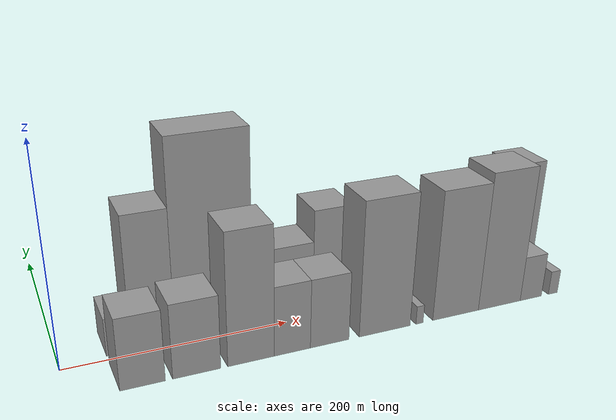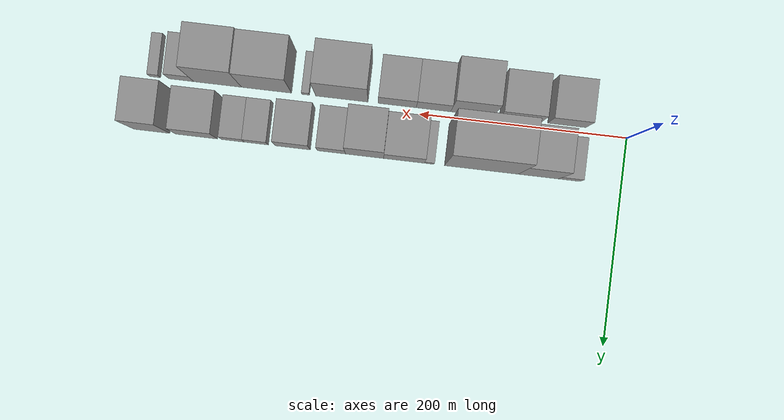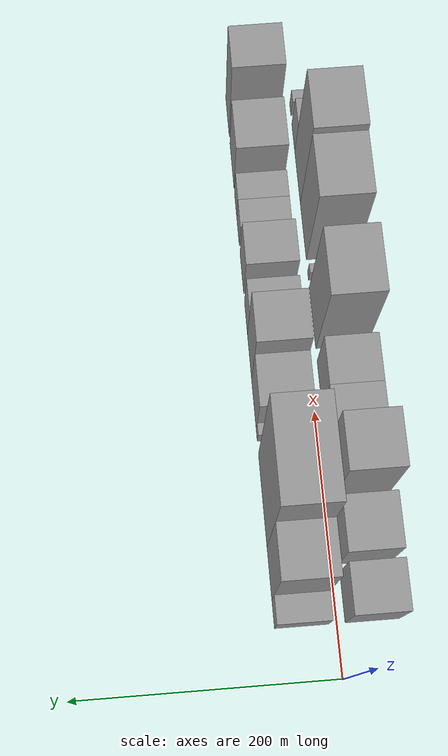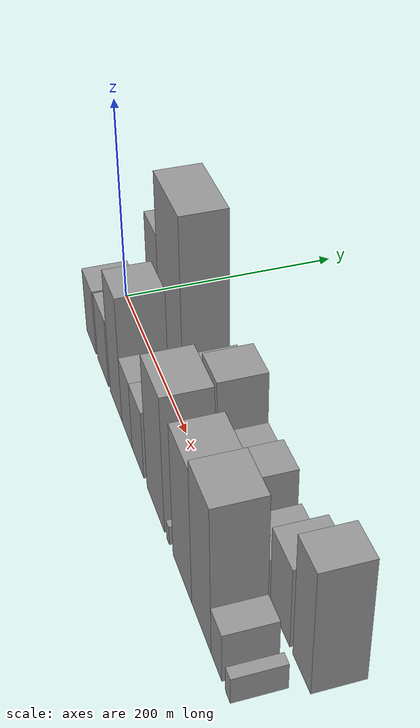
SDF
<sdf version="1.6">
 <world name="default">
  <scene>
   <sky><clouds><speed>12</speed></clouds></sky>
   <ambient>0.4 0.4 0.4 1</ambient>
   <background>0.7 0.7 0.7 1</background>
   <shadows>1</shadows>
  </scene>
  <gravity>0 0 -9.8066</gravity>
  <magnetic_field>6e-06 2.3e-05 -4.2e-05</magnetic_field>
  <physics default="0" name="default_physics" type="ode">
   <ode>
    <solver>
     <type>quick</type>
     <iters>10</iters>
     <sor>1.0</sor>
     <use_dynamic_moi_rescaling>0</use_dynamic_moi_rescaling>
    </solver>
    <constraints>
     <cfm>0</cfm>
     <erp>0.2</erp>
     <contact_max_correcting_vel>100</contact_max_correcting_vel>
     <contact_surface_layer>0.001</contact_surface_layer>
    </constraints>
   </ode>
   <max_step_size>0.004</max_step_size>
   <real_time_factor>1</real_time_factor>
   <real_time_update_rate>250</real_time_update_rate>
  </physics>
  <light name="sun" type="directional">
   <pose>0 0 10 0 0 0</pose>
   <diffuse>0.8 0.8 0.8 1</diffuse>
   <specular>0.2 0.2 0.2 1</specular>
   <attenuation>
    <range>1000</range>
    <constant>0.9</constant>
    <linear>0.01</linear>
    <quadratic>0.001</quadratic>
   </attenuation>
   <direction>-0.5 0.1 -0.9</direction>
  </light>
  <model name="building_1">
   <static>1</static>
   <pose>50.4767 26.0000 0 0.000000 0.000000 1.570796</pose>
   <link name="link">
    <pose>0 0 18.00 0 0 0</pose>
    <collision name="collision"><geometry><box><size>40.0000 20.9534 36.0000</size></box></geometry></collision>
    <visual name="visual">
     <cast_shadows>0</cast_shadows>
     <geometry><box><size>40.0000 20.9534 36.0000</size></box></geometry>
     <material>
      <script>
       <uri>model://grey_wall/materials/scripts</uri>
       <uri>model://grey_wall/materials/textures</uri>
       <name>vrc/grey_wall</name>
      </script>
     </material>
    </visual>
   </link>
  </model>
  <model name="building_2">
   <static>1</static>
   <pose>80.3056 26.0000 0 0.000000 0.000000 1.570796</pose>
   <link name="link">
    <pose>0 0 63.00 0 0 0</pose>
    <collision name="collision"><geometry><box><size>40.0000 38.7043 126.0000</size></box></geometry></collision>
    <visual name="visual">
     <cast_shadows>0</cast_shadows>
     <geometry><box><size>40.0000 38.7043 126.0000</size></box></geometry>
     <material>
      <script>
       <uri>model://grey_wall/materials/scripts</uri>
       <uri>model://grey_wall/materials/textures</uri>
       <name>vrc/grey_wall</name>
      </script>
     </material>
    </visual>
   </link>
  </model>
  <model name="building_3">
   <static>1</static>
   <pose>135.0981 26.0000 0 0.000000 0.000000 1.570796</pose>
   <link name="link">
    <pose>0 0 93.00 0 0 0</pose>
    <collision name="collision"><geometry><box><size>40.0000 70.8808 186.0000</size></box></geometry></collision>
    <visual name="visual">
     <cast_shadows>0</cast_shadows>
     <geometry><box><size>40.0000 70.8808 186.0000</size></box></geometry>
     <material>
      <script>
       <uri>model://grey_wall/materials/scripts</uri>
       <uri>model://grey_wall/materials/textures</uri>
       <name>vrc/grey_wall</name>
      </script>
     </material>
    </visual>
   </link>
  </model>
  <model name="building_4">
   <static>1</static>
   <pose>185.2259 26.0000 0 0.000000 0.000000 1.570796</pose>
   <link name="link">
    <pose>0 0 10.50 0 0 0</pose>
    <collision name="collision"><geometry><box><size>40.0000 9.3748 21.0000</size></box></geometry></collision>
    <visual name="visual">
     <cast_shadows>0</cast_shadows>
     <geometry><box><size>40.0000 9.3748 21.0000</size></box></geometry>
     <material>
      <script>
       <uri>model://grey_wall/materials/scripts</uri>
       <uri>model://grey_wall/materials/textures</uri>
       <name>vrc/grey_wall</name>
      </script>
     </material>
    </visual>
   </link>
  </model>
  <model name="building_5">
   <static>1</static>
   <pose>209.4466 26.0000 0 0.000000 0.000000 1.570796</pose>
   <link name="link">
    <pose>0 0 36.00 0 0 0</pose>
    <collision name="collision"><geometry><box><size>40.0000 39.0666 72.0000</size></box></geometry></collision>
    <visual name="visual">
     <cast_shadows>0</cast_shadows>
     <geometry><box><size>40.0000 39.0666 72.0000</size></box></geometry>
     <material>
      <script>
       <uri>model://grey_wall/materials/scripts</uri>
       <uri>model://grey_wall/materials/textures</uri>
       <name>vrc/grey_wall</name>
      </script>
     </material>
    </visual>
   </link>
  </model>
  <model name="building_6">
   <static>1</static>
   <pose>247.3911 26.0000 0 0.000000 0.000000 1.570796</pose>
   <link name="link">
    <pose>0 0 51.00 0 0 0</pose>
    <collision name="collision"><geometry><box><size>40.0000 36.8223 102.0000</size></box></geometry></collision>
    <visual name="visual">
     <cast_shadows>0</cast_shadows>
     <geometry><box><size>40.0000 36.8223 102.0000</size></box></geometry>
     <material>
      <script>
       <uri>model://grey_wall/materials/scripts</uri>
       <uri>model://grey_wall/materials/textures</uri>
       <name>vrc/grey_wall</name>
      </script>
     </material>
    </visual>
   </link>
  </model>
  <model name="building_7">
   <static>1</static>
   <pose>279.3047 26.0000 0 0.000000 0.000000 1.570796</pose>
   <link name="link">
    <pose>0 0 27.00 0 0 0</pose>
    <collision name="collision"><geometry><box><size>40.0000 27.0050 54.0000</size></box></geometry></collision>
    <visual name="visual">
     <cast_shadows>0</cast_shadows>
     <geometry><box><size>40.0000 27.0050 54.0000</size></box></geometry>
     <material>
      <script>
       <uri>model://grey_wall/materials/scripts</uri>
       <uri>model://grey_wall/materials/textures</uri>
       <name>vrc/grey_wall</name>
      </script>
     </material>
    </visual>
   </link>
  </model>
  <model name="building_8">
   <static>1</static>
   <pose>316.4989 26.0000 0 0.000000 0.000000 1.570796</pose>
   <link name="link">
    <pose>0 0 33.00 0 0 0</pose>
    <collision name="collision"><geometry><box><size>40.0000 33.3832 66.0000</size></box></geometry></collision>
    <visual name="visual">
     <cast_shadows>0</cast_shadows>
     <geometry><box><size>40.0000 33.3832 66.0000</size></box></geometry>
     <material>
      <script>
       <uri>model://grey_wall/materials/scripts</uri>
       <uri>model://grey_wall/materials/textures</uri>
       <name>vrc/grey_wall</name>
      </script>
     </material>
    </visual>
   </link>
  </model>
  <model name="building_9">
   <static>1</static>
   <pose>351.6913 26.0000 0 0.000000 0.000000 1.570796</pose>
   <link name="link">
    <pose>0 0 19.50 0 0 0</pose>
    <collision name="collision"><geometry><box><size>40.0000 23.0017 39.0000</size></box></geometry></collision>
    <visual name="visual">
     <cast_shadows>0</cast_shadows>
     <geometry><box><size>40.0000 23.0017 39.0000</size></box></geometry>
     <material>
      <script>
       <uri>model://grey_wall/materials/scripts</uri>
       <uri>model://grey_wall/materials/textures</uri>
       <name>vrc/grey_wall</name>
      </script>
     </material>
    </visual>
   </link>
  </model>
  <model name="building_10">
   <static>1</static>
   <pose>374.2593 26.0000 0 0.000000 0.000000 1.570796</pose>
   <link name="link">
    <pose>0 0 19.50 0 0 0</pose>
    <collision name="collision"><geometry><box><size>40.0000 22.1343 39.0000</size></box></geometry></collision>
    <visual name="visual">
     <cast_shadows>0</cast_shadows>
     <geometry><box><size>40.0000 22.1343 39.0000</size></box></geometry>
     <material>
      <script>
       <uri>model://grey_wall/materials/scripts</uri>
       <uri>model://grey_wall/materials/textures</uri>
       <name>vrc/grey_wall</name>
      </script>
     </material>
    </visual>
   </link>
  </model>
  <model name="building_11">
   <static>1</static>
   <pose>409.3390 26.0000 0 0.000000 0.000000 1.570796</pose>
   <link name="link">
    <pose>0 0 37.50 0 0 0</pose>
    <collision name="collision"><geometry><box><size>40.0000 40.0251 75.0000</size></box></geometry></collision>
    <visual name="visual">
     <cast_shadows>0</cast_shadows>
     <geometry><box><size>40.0000 40.0251 75.0000</size></box></geometry>
     <material>
      <script>
       <uri>model://grey_wall/materials/scripts</uri>
       <uri>model://grey_wall/materials/textures</uri>
       <name>vrc/grey_wall</name>
      </script>
     </material>
    </visual>
   </link>
  </model>
  <model name="building_12">
   <static>1</static>
   <pose>452.5231 26.0000 0 0.000000 0.000000 1.570796</pose>
   <link name="link">
    <pose>0 0 57.00 0 0 0</pose>
    <collision name="collision"><geometry><box><size>40.0000 34.3430 114.0000</size></box></geometry></collision>
    <visual name="visual">
     <cast_shadows>0</cast_shadows>
     <geometry><box><size>40.0000 34.3430 114.0000</size></box></geometry>
     <material>
      <script>
       <uri>model://grey_wall/materials/scripts</uri>
       <uri>model://grey_wall/materials/textures</uri>
       <name>vrc/grey_wall</name>
      </script>
     </material>
    </visual>
   </link>
  </model>
  <model name="building_13">
   <static>1</static>
   <pose>58.4960 -26.0000 0 0.000000 0.000000 1.570796</pose>
   <link name="link">
    <pose>0 0 33.00 0 0 0</pose>
    <collision name="collision"><geometry><box><size>40.0000 36.9920 66.0000</size></box></geometry></collision>
    <visual name="visual">
     <cast_shadows>0</cast_shadows>
     <geometry><box><size>40.0000 36.9920 66.0000</size></box></geometry>
     <material>
      <script>
       <uri>model://grey_wall/materials/scripts</uri>
       <uri>model://grey_wall/materials/textures</uri>
       <name>vrc/grey_wall</name>
      </script>
     </material>
    </visual>
   </link>
  </model>
  <model name="building_14">
   <static>1</static>
   <pose>103.3198 -26.0000 0 0.000000 0.000000 1.570796</pose>
   <link name="link">
    <pose>0 0 34.50 0 0 0</pose>
    <collision name="collision"><geometry><box><size>40.0000 40.6556 69.0000</size></box></geometry></collision>
    <visual name="visual">
     <cast_shadows>0</cast_shadows>
     <geometry><box><size>40.0000 40.6556 69.0000</size></box></geometry>
     <material>
      <script>
       <uri>model://grey_wall/materials/scripts</uri>
       <uri>model://grey_wall/materials/textures</uri>
       <name>vrc/grey_wall</name>
      </script>
     </material>
    </visual>
   </link>
  </model>
  <model name="building_15">
   <static>1</static>
   <pose>150.1846 -26.0000 0 0.000000 0.000000 1.570796</pose>
   <link name="link">
    <pose>0 0 61.50 0 0 0</pose>
    <collision name="collision"><geometry><box><size>40.0000 41.0740 123.0000</size></box></geometry></collision>
    <visual name="visual">
     <cast_shadows>0</cast_shadows>
     <geometry><box><size>40.0000 41.0740 123.0000</size></box></geometry>
     <material>
      <script>
       <uri>model://grey_wall/materials/scripts</uri>
       <uri>model://grey_wall/materials/textures</uri>
       <name>vrc/grey_wall</name>
      </script>
     </material>
    </visual>
   </link>
  </model>
  <model name="building_16">
   <static>1</static>
   <pose>187.2796 -26.0000 0 0.000000 0.000000 1.570796</pose>
   <link name="link">
    <pose>0 0 33.00 0 0 0</pose>
    <collision name="collision"><geometry><box><size>40.0000 33.1161 66.0000</size></box></geometry></collision>
    <visual name="visual">
     <cast_shadows>0</cast_shadows>
     <geometry><box><size>40.0000 33.1161 66.0000</size></box></geometry>
     <material>
      <script>
       <uri>model://grey_wall/materials/scripts</uri>
       <uri>model://grey_wall/materials/textures</uri>
       <name>vrc/grey_wall</name>
      </script>
     </material>
    </visual>
   </link>
  </model>
  <model name="building_17">
   <static>1</static>
   <pose>222.0621 -26.0000 0 0.000000 0.000000 1.570796</pose>
   <link name="link">
    <pose>0 0 33.00 0 0 0</pose>
    <collision name="collision"><geometry><box><size>40.0000 36.4490 66.0000</size></box></geometry></collision>
    <visual name="visual">
     <cast_shadows>0</cast_shadows>
     <geometry><box><size>40.0000 36.4490 66.0000</size></box></geometry>
     <material>
      <script>
       <uri>model://grey_wall/materials/scripts</uri>
       <uri>model://grey_wall/materials/textures</uri>
       <name>vrc/grey_wall</name>
      </script>
     </material>
    </visual>
   </link>
  </model>
  <model name="building_18">
   <static>1</static>
   <pose>275.4888 -26.0000 0 0.000000 0.000000 1.570796</pose>
   <link name="link">
    <pose>0 0 64.50 0 0 0</pose>
    <collision name="collision"><geometry><box><size>40.0000 50.4043 129.0000</size></box></geometry></collision>
    <visual name="visual">
     <cast_shadows>0</cast_shadows>
     <geometry><box><size>40.0000 50.4043 129.0000</size></box></geometry>
     <material>
      <script>
       <uri>model://grey_wall/materials/scripts</uri>
       <uri>model://grey_wall/materials/textures</uri>
       <name>vrc/grey_wall</name>
      </script>
     </material>
    </visual>
   </link>
  </model>
  <model name="building_19">
   <static>1</static>
   <pose>310.3561 -26.0000 0 0.000000 0.000000 1.570796</pose>
   <link name="link">
    <pose>0 0 9.00 0 0 0</pose>
    <collision name="collision"><geometry><box><size>40.0000 7.3302 18.0000</size></box></geometry></collision>
    <visual name="visual">
     <cast_shadows>0</cast_shadows>
     <geometry><box><size>40.0000 7.3302 18.0000</size></box></geometry>
     <material>
      <script>
       <uri>model://grey_wall/materials/scripts</uri>
       <uri>model://grey_wall/materials/textures</uri>
       <name>vrc/grey_wall</name>
      </script>
     </material>
    </visual>
   </link>
  </model>
  <model name="building_20">
   <static>1</static>
   <pose>348.1432 -26.0000 0 0.000000 0.000000 1.570796</pose>
   <link name="link">
    <pose>0 0 63.00 0 0 0</pose>
    <collision name="collision"><geometry><box><size>40.0000 48.2441 126.0000</size></box></geometry></collision>
    <visual name="visual">
     <cast_shadows>0</cast_shadows>
     <geometry><box><size>40.0000 48.2441 126.0000</size></box></geometry>
     <material>
      <script>
       <uri>model://grey_wall/materials/scripts</uri>
       <uri>model://grey_wall/materials/textures</uri>
       <name>vrc/grey_wall</name>
      </script>
     </material>
    </visual>
   </link>
  </model>
  <model name="building_21">
   <static>1</static>
   <pose>395.3194 -26.0000 0 0.000000 0.000000 1.570796</pose>
   <link name="link">
    <pose>0 0 67.50 0 0 0</pose>
    <collision name="collision"><geometry><box><size>40.0000 46.1083 135.0000</size></box></geometry></collision>
    <visual name="visual">
     <cast_shadows>0</cast_shadows>
     <geometry><box><size>40.0000 46.1083 135.0000</size></box></geometry>
     <material>
      <script>
       <uri>model://grey_wall/materials/scripts</uri>
       <uri>model://grey_wall/materials/textures</uri>
       <name>vrc/grey_wall</name>
      </script>
     </material>
    </visual>
   </link>
  </model>
  <model name="building_22">
   <static>1</static>
   <pose>430.4102 -26.0000 0 0.000000 0.000000 1.570796</pose>
   <link name="link">
    <pose>0 0 22.50 0 0 0</pose>
    <collision name="collision"><geometry><box><size>40.0000 24.0734 45.0000</size></box></geometry></collision>
    <visual name="visual">
     <cast_shadows>0</cast_shadows>
     <geometry><box><size>40.0000 24.0734 45.0000</size></box></geometry>
     <material>
      <script>
       <uri>model://grey_wall/materials/scripts</uri>
       <uri>model://grey_wall/materials/textures</uri>
       <name>vrc/grey_wall</name>
      </script>
     </material>
    </visual>
   </link>
  </model>
  <model name="building_23">
   <static>1</static>
   <pose>455.6032 -26.0000 0 0.000000 0.000000 1.570796</pose>
   <link name="link">
    <pose>0 0 12.00 0 0 0</pose>
    <collision name="collision"><geometry><box><size>40.0000 10.3124 24.0000</size></box></geometry></collision>
    <visual name="visual">
     <cast_shadows>0</cast_shadows>
     <geometry><box><size>40.0000 10.3124 24.0000</size></box></geometry>
     <material>
      <script>
       <uri>model://grey_wall/materials/scripts</uri>
       <uri>model://grey_wall/materials/textures</uri>
       <name>vrc/grey_wall</name>
      </script>
     </material>
    </visual>
   </link>
  </model>
 </world>
</sdf>
